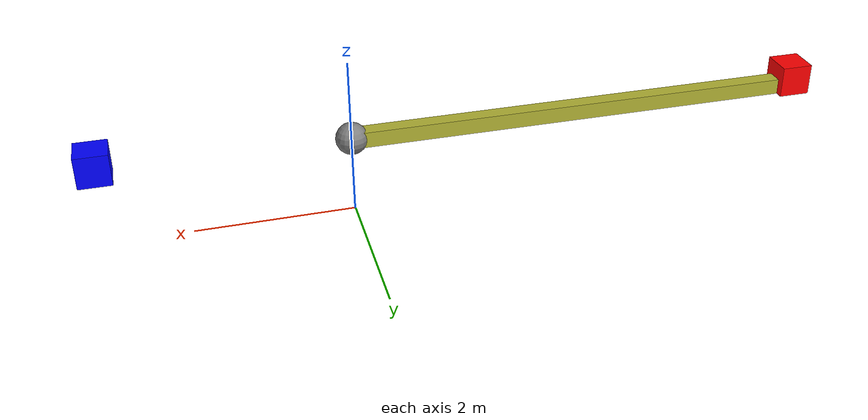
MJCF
<mujoco>
  <option gravity="0 0 -9.81"/>
  <worldbody>
    <body name="fulcrum" pos="0 0 1">
      <geom type="sphere" size="0.2" rgba="0.5 0.5 0.5 1"/>
    </body>
    <body name="beam" pos="-3 0 1">
      <geom type="box" size="3 0.1 0.1" rgba="0.7 0.7 0.2 1"/>
    </body>
    <body name="weight1" pos="-5.91 0 1.1">
      <geom type="box" size="0.2 0.2 0.2" mass="1.46" rgba="1 0 0 1"/>
      <joint name="weight1_joint" type="free"/>
    </body>
    <body name="weight2" pos="3.03 0 1.1">
      <geom type="box" size="0.2 0.2 0.2" mass="0.93" rgba="0 0 1 1"/>
      <joint name="weight2_joint" type="free"/>
    </body>
  </worldbody>
</mujoco>
